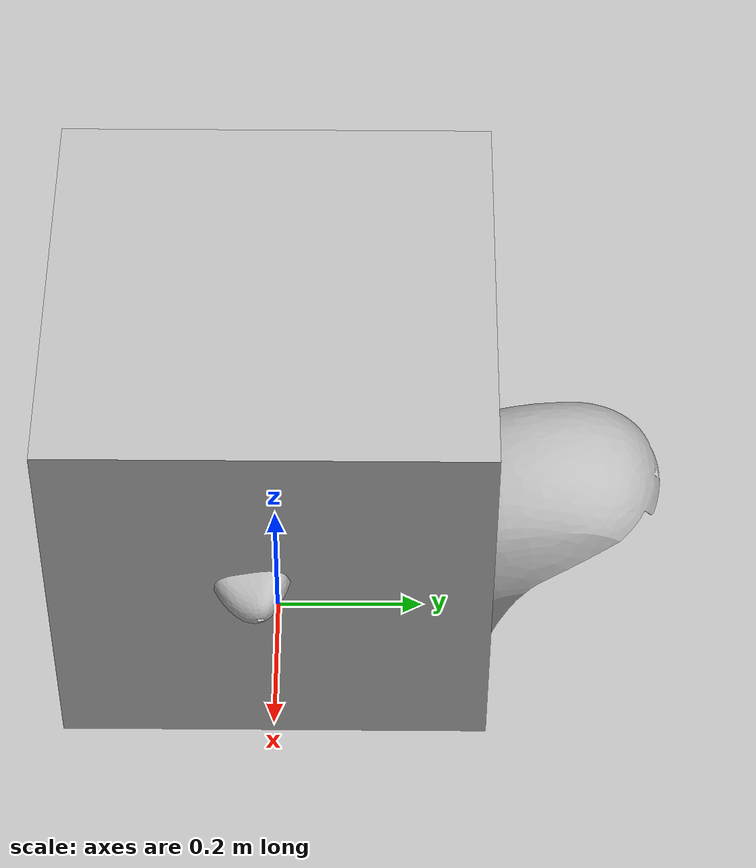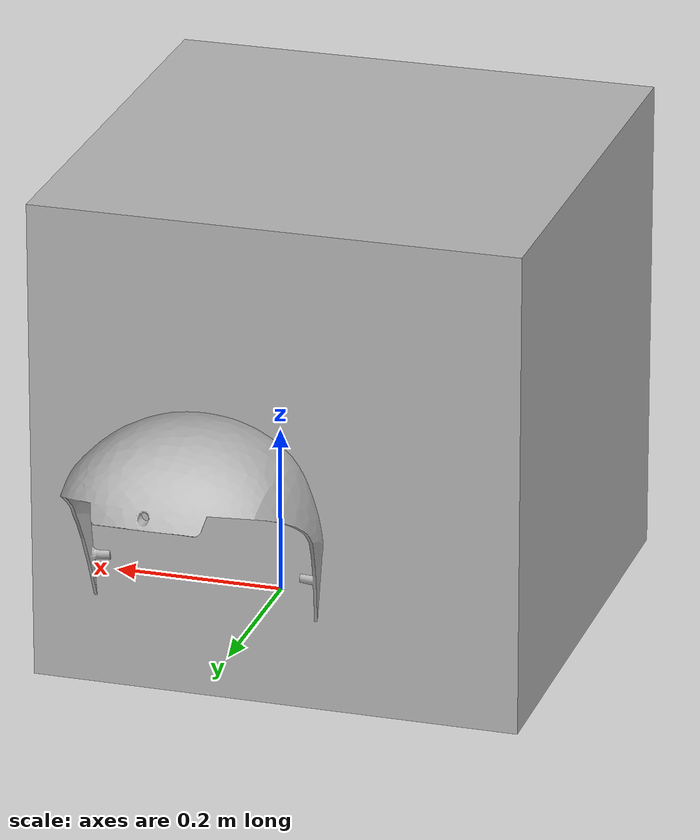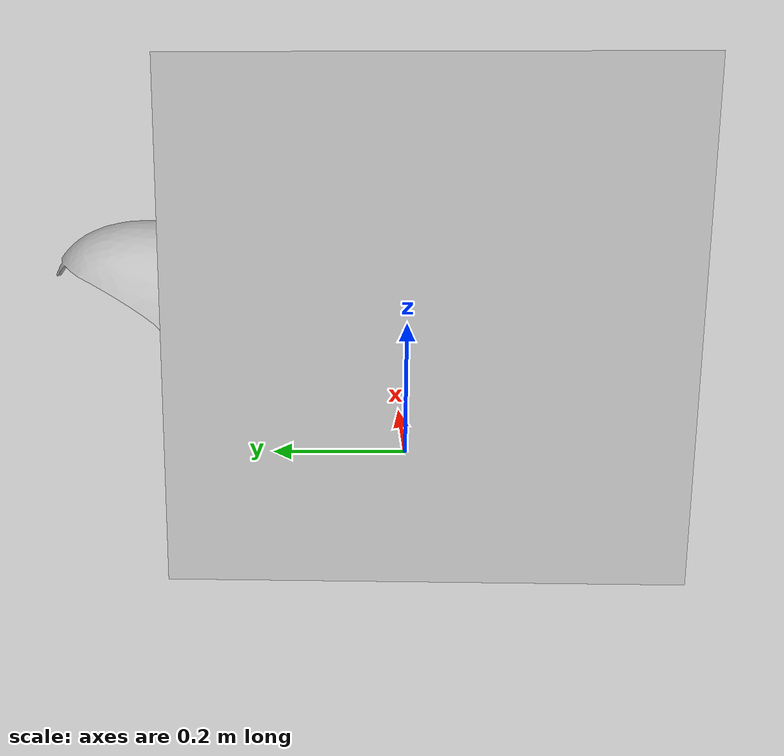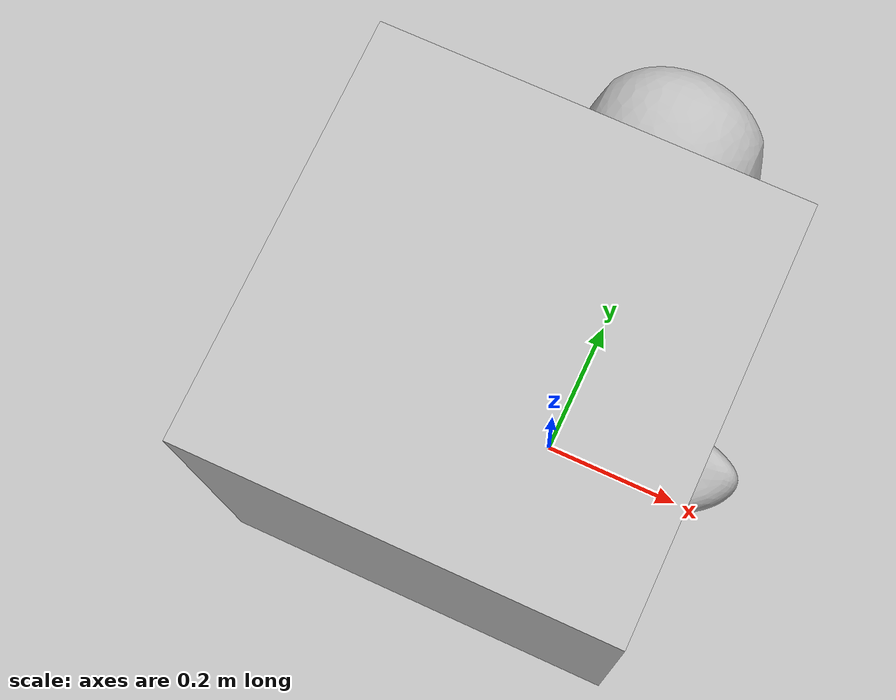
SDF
<?xml version='1.0'?>
<sdf version='1.5'>
  <model name='roboy'>
    <link name='roboy_torso'>
      <pose frame=''>0 0 0 0 0 0</pose>
      <inertial>
        <mass>1</mass>
        <pose frame=''>0 0 0 0 -0 0</pose>
        <inertia>
          <ixx>1</ixx>
          <ixy>0</ixy>
          <ixz>0</ixz>
          <iyy>1</iyy>
          <iyz>0</iyz>
          <izz>1</izz>
        </inertia>
      </inertial>
      <self_collide>0</self_collide>
      <kinematic>0</kinematic>
      <visual name='visual'>
        <geometry>
          <mesh>
            <scale>1 1 1</scale>
            <uri>model://roboy_simplified/dae/baugruppe_oberkoerper_fuer_mep.dae</uri>
          </mesh>
        </geometry>
        <pose frame=''>0 0 0 0 -0 0</pose>
        <cast_shadows>1</cast_shadows>
        <transparency>0</transparency>
      </visual>
      <collision name='collision'>
        <laser_retro>0</laser_retro>
        <max_contacts>10</max_contacts>
        <pose frame=''>0 0 0 0 -0 0</pose>
        <geometry>
          <mesh>
            <uri>model://roboy_simplified/dae/baugruppe_oberkoerper_fuer_mep.dae</uri>
          </mesh>
        </geometry>
        <surface>
          <friction>
            <ode>
              <mu>1</mu>
              <mu2>1</mu2>
              <fdir1>0 0 0</fdir1>
              <slip1>0</slip1>
              <slip2>0</slip2>
            </ode>
          </friction>
          <bounce>
            <restitution_coefficient>0</restitution_coefficient>
            <threshold>1e+06</threshold>
          </bounce>
          <contact>
            <collide_without_contact>0</collide_without_contact>
            <collide_without_contact_bitmask>1</collide_without_contact_bitmask>
            <collide_bitmask>1</collide_bitmask>
            <ode>
              <soft_cfm>0</soft_cfm>
              <soft_erp>0.2</soft_erp>
              <kp>1e+13</kp>
              <kd>1</kd>
              <max_vel>0.01</max_vel>
              <min_depth>0</min_depth>
            </ode>
            <bullet>
              <split_impulse>1</split_impulse>
              <split_impulse_penetration_threshold>-0.01</split_impulse_penetration_threshold>
              <soft_cfm>0</soft_cfm>
              <soft_erp>0.2</soft_erp>
              <kp>1e+13</kp>
              <kd>1</kd>
            </bullet>
          </contact>
        </surface>
      </collision>
    </link>
    <link name='box'>
      <pose frame=''>-0.08 0 0.275 0 -0 0</pose>
      <gravity>1</gravity>
      <self_collide>0</self_collide>
      <kinematic>0</kinematic>
      <inertial>
        <mass>1</mass>
        <pose frame=''>-0 0 0 0 -0 0</pose>
        <inertia>
          <ixx>1</ixx>
          <ixy>0</ixy>
          <ixz>0</ixz>
          <iyy>1</iyy>
          <iyz>0</iyz>
          <izz>1</izz>
        </inertia>
      </inertial>
      <visual name='visual'>
        <pose frame=''>0 0 0 0 -0 0</pose>
        <geometry>
          <box>
            <size>0.57 0.57 0.57</size>
          </box>
        </geometry>
        <cast_shadows>1</cast_shadows>
        <transparency>0</transparency>
      </visual>
      <collision name='collision'>
        <laser_retro>0</laser_retro>
        <max_contacts>10</max_contacts>
        <pose frame=''>0 0 0 0 -0 0</pose>
        <geometry>
          <box>
            <size>0.57 0.57 0.57</size>
          </box>
        </geometry>
        <surface>
          <friction>
            <ode>
              <mu>1</mu>
              <mu2>1</mu2>
              <fdir1>0 0 0</fdir1>
              <slip1>0</slip1>
              <slip2>0</slip2>
            </ode>
          </friction>
          <bounce>
            <restitution_coefficient>0</restitution_coefficient>
            <threshold>1e+06</threshold>
          </bounce>
          <contact>
            <collide_without_contact>0</collide_without_contact>
            <collide_without_contact_bitmask>1</collide_without_contact_bitmask>
            <collide_bitmask>1</collide_bitmask>
            <ode>
              <soft_cfm>0</soft_cfm>
              <soft_erp>0.2</soft_erp>
              <kp>1e+13</kp>
              <kd>1</kd>
              <max_vel>0.01</max_vel>
              <min_depth>0</min_depth>
            </ode>
            <bullet>
              <split_impulse>1</split_impulse>
              <split_impulse_penetration_threshold>-0.01</split_impulse_penetration_threshold>
              <soft_cfm>0</soft_cfm>
              <soft_erp>0.2</soft_erp>
              <kp>1e+13</kp>
              <kd>1</kd>
            </bullet>
          </contact>
        </surface>
      </collision>
    </link>
    <link name='roboy_head'>
      <pose frame=''>0 0.35 0 0 -0 0</pose>
      <inertial>
        <mass>1</mass>
        <pose frame=''>0 0 0 0 -0 0</pose>
        <inertia>
          <ixx>1</ixx>
          <ixy>0</ixy>
          <ixz>0</ixz>
          <iyy>1</iyy>
          <iyz>0</iyz>
          <izz>1</izz>
        </inertia>
      </inertial>
      <self_collide>0</self_collide>
      <kinematic>0</kinematic>
      <visual name='visual'>
        <geometry>
          <mesh>
            <scale>1 1 1</scale>
            <uri>model://roboy_simplified/dae/121213_PROTOTYP_Kopf-Vorderteil.dae</uri>
          </mesh>
        </geometry>
        <pose frame=''>0 0 0 0 -0 0</pose>
        <cast_shadows>1</cast_shadows>
        <transparency>0</transparency>
      </visual>
      <collision name='collision'>
        <laser_retro>0</laser_retro>
        <max_contacts>10</max_contacts>
        <pose frame=''>0 0 0 0 -0 0</pose>
        <geometry>
          <mesh>
            <uri>model://roboy_simplified/dae/121213_PROTOTYP_Kopf-Vorderteil.dae</uri>
          </mesh>
        </geometry>
        <surface>
          <friction>
            <ode>
              <mu>1</mu>
              <mu2>1</mu2>
              <fdir1>0 0 0</fdir1>
              <slip1>0</slip1>
              <slip2>0</slip2>
            </ode>
          </friction>
          <bounce>
            <restitution_coefficient>0</restitution_coefficient>
            <threshold>1e+06</threshold>
          </bounce>
          <contact>
            <collide_without_contact>0</collide_without_contact>
            <collide_without_contact_bitmask>1</collide_without_contact_bitmask>
            <collide_bitmask>1</collide_bitmask>
            <ode>
              <soft_cfm>0</soft_cfm>
              <soft_erp>0.2</soft_erp>
              <kp>1e+13</kp>
              <kd>1</kd>
              <max_vel>0.01</max_vel>
              <min_depth>0</min_depth>
            </ode>
            <bullet>
              <split_impulse>1</split_impulse>
              <split_impulse_penetration_threshold>-0.01</split_impulse_penetration_threshold>
              <soft_cfm>0</soft_cfm>
              <soft_erp>0.2</soft_erp>
              <kp>1e+13</kp>
              <kd>1</kd>
            </bullet>
          </contact>
        </surface>
      </collision>
    </link>
  </model>
</sdf>
